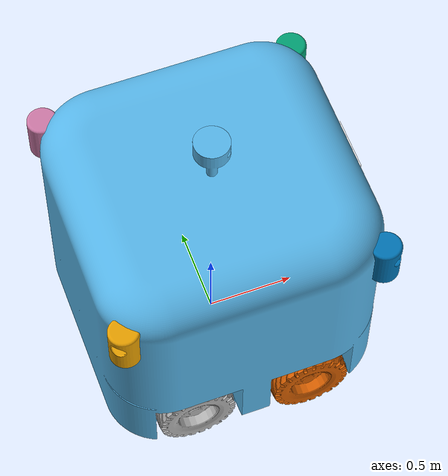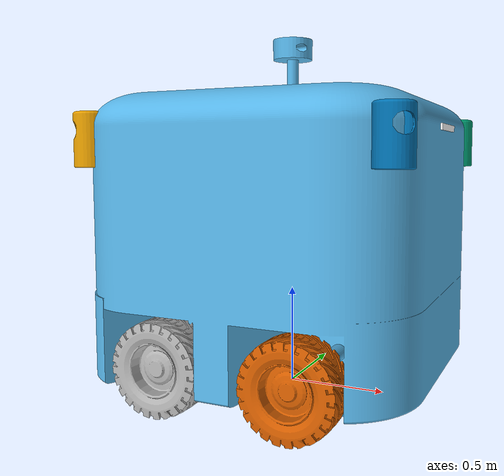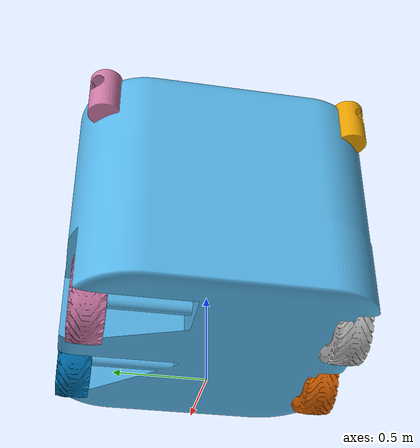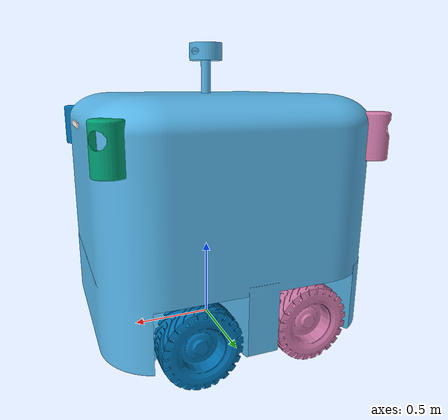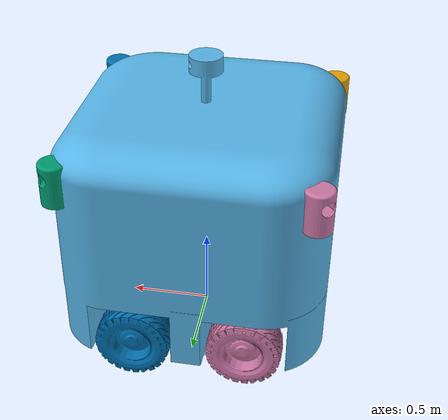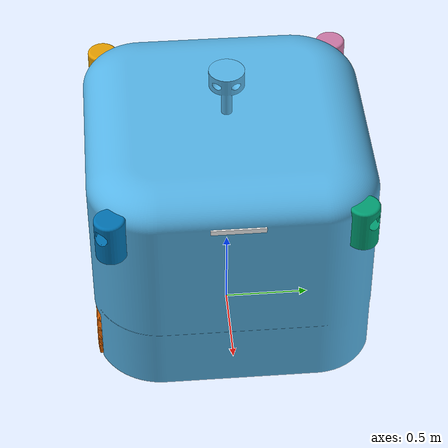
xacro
<?xml version="1.0"?>
<robot xmlns:xacro="http://www.ros.org/wiki/xacro" name="deliverybot_sim">

    <!-- Launch args-->

    <xacro:arg name="gazebo_version" default="classic"/>
    <xacro:property name="gazebo_version" value="$(arg gazebo_version)"/>

    <!-- Gazebo Ignition sensor plugins-->
    <xacro:if value="${gazebo_version == 'ignition'}">
      <gazebo>
        <plugin
          filename="libignition-gazebo-sensors-system.so" name="ignition::gazebo::systems::Sensors">
          <render_engine>ogre2</render_engine>
        </plugin>
      </gazebo>
    </xacro:if>

    <!-- Gazebo gz sensor plugins-->
    <xacro:if value="${gazebo_version == 'gz'}">
      <gazebo>
        <plugin
          filename="libgazebo_garden_plugin.so" name="gazebo_garden_plugin"/>
      </gazebo>
    </xacro:if>

    <!-- Robot Structure  -->
    <xacro:include filename="$(find deliverybot_description)/urdf/common_properties.xacro" />
    <xacro:include filename="$(find deliverybot_description)/urdf/inertial_properties.xacro" />
    <xacro:include filename="$(find deliverybot_description)/urdf/robot.xacro" />

    <!-- Sensors-->
    <xacro:include filename="$(find deliverybot_description)/urdf/imu.xacro" />
    <xacro:include filename="$(find deliverybot_description)/urdf/lidar.xacro" />
    <xacro:include filename="$(find deliverybot_description)/urdf/depth_camera.xacro" />

    <!-- Frictions and Transmissions-->
    <xacro:include filename="$(find deliverybot_description)/urdf/gazebo_properties.xacro" />

    <!-- Ackermann Control -->
    <xacro:include filename="$(find deliverybot_description)/urdf/gazebo_ros2_control.xacro"/>

</robot>

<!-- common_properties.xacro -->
<robot xmlns:xacro="http://www.ros.org/wiki/xacro">

    <!-- Variables -->
    <xacro:property name="PI" value="3.14"/>

    <!-- chassis position-->
    <xacro:property name="body_offset_z" value="0.802"/>

    <!-- wheels properties -->
    <xacro:property name="wheel_radius" value="0.226428"/>
    <xacro:property name="wheel_diameter" value="0.452856"/>
    <xacro:property name="wheel_separation_y" value="1.353834"/>
    <xacro:property name="wheel_mass" value="2.26428" />
    <xacro:property name="wheel_length" value="0.1869477" />

    <xacro:property name="front_offset_x" value="0.31398"/>
    <xacro:property name="rear_offset_x" value="-0.354123"/>
    <xacro:property name="left_offset_y" value="0.676917"/>
    <xacro:property name="right_offset_y" value="-0.676917"/>
    <xacro:property name="left_offset_from_steer_y" value="0.03"/>
    <xacro:property name="right_offset_from_steer_y" value="-0.03"/>
    <xacro:property name="body_wheels_offset_z" value="${0.22388 - body_offset_z}"/>

    <!-- scan (2D lidar)-->

    <!-- imu-->
    <xacro:property name="body_imu_offset_z" value="${0.22388 - body_offset_z}"/>

    <!-- lidar-->
    <xacro:property name="lidar_offset_x" value="0.72184"/>
    <xacro:property name="lidar_offset_y" value="0.679109"/>
    <xacro:property name="lidar_offset_yaw" value="${PI/4}"/>
    <xacro:property name="body_lidar_offset_z" value="${1.2194 - body_offset_z}"/>
    <xacro:property name="lidar_sensor_offset_z" value="${1.3094 - body_offset_z}"/>
    <xacro:property name="central_lidar_offset_z" value="${1.69712 - body_offset_z}"/>

    <!-- depth camera-->
    <xacro:property name="depth_camera_offset_x" value="0.79739"/>
    <xacro:property name="depth_camera_offset_y" value="0.0"/>
    <xacro:property name="body_depth_camera_offset_z" value="${1.3234 - body_offset_z}"/>

    <!-- Ackermann plugin -->
    <xacro:property name="wheelbase_x" value="0.663378"/>
    <xacro:property name="front_wheel_track_y" value="1.353834"/>
    <xacro:property name="rear_wheel_track_y" value="1.353834"/>
    <xacro:property name="front_wheels_radius" value="${wheel_radius}"/>
    <xacro:property name="rear_wheels_radius" value="${wheel_radius}"/>

    <xacro:property name="steering_effort_limit" value="5.0"/>
    <xacro:property name="steering_velocity_limit" value="1000.0"/>

    <xacro:property name="wheel_effort_limit" value="10.0"/>
    <xacro:property name="wheel_velocity_limit" value="1000.0"/>

    <xacro:property name="damping" value="0.0"/>
    <xacro:property name="friction" value="2.0"/>

    <xacro:property name="mu1" value="10.0" />
    <xacro:property name="mu2" value="8.0" />

    <!-- RVIZ Materials -->
    <material name="white">
        <color rgba="1 1 1 1"/>
    </material>
    <material name="grey">
        <color rgba="0.5 0.5 0.5 1"/>
    </material>
    <material name="anthracite">
        <color rgba="0.219 0.2431 0.2588 1"/>
    </material>

</robot>

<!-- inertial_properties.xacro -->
<robot xmlns:xacro="http://www.ros.org/wiki/xacro">

  <!-- BODY-->
  <xacro:macro name="body_inertial">
      <inertial>
        <origin xyz="-0.0055 -0.0002 -0.0014" rpy="0.0 0.0 0.0"/>

        <mass value="21.828734672527542"/>
        <inertia
          ixx="197.9644035402808"
          ixy="-1.9097414111524087"
          ixz="-0.1499079161071719"
          iyy="214.31325562158773"
          iyz="0.24907860474737206"
          izz="235.7642298262934"/>
      </inertial>
  </xacro:macro>

  <!-- STEERING-->
  <xacro:macro name="steering_inertial">
    <inertial>
      <mass value="0.25"/>
      <inertia
            ixx="0.001"
            ixy="0"
            ixz="0"
            iyy="0.001"
            iyz="0"
            izz="0.001"/>
    </inertial>
  </xacro:macro>

  <!-- WHEELS -->
  <!-- dummy-->
  <xacro:macro name="cylinder_inertial" params="m r l xyz rpy">
    <inertial>
        <origin xyz="${xyz}" rpy="${rpy}"/>
        <mass value="${m}" />
        <inertia ixx="${(m/12)*(3*r*r+l*l)}" ixy="0" ixz="0"
                  iyy="${(m/12)*(3*r*r+l*l)}" iyz="0"
                  izz="${(m*r*r)/2}" />
    </inertial>
  </xacro:macro>

  <xacro:macro name="wheel_right_inertial">
    <inertial>
      <origin rpy="1.57 0 0" xyz="0 0 0"/>
    <mass value="2.26428"/>
    <inertia
        ixx="0.142467259859483"
        ixy="0"
        ixz="0"
        iyy="0.142467259859483"
        iyz="0"
        izz="0.232177637223095"/>
    </inertial>
  </xacro:macro>

  <xacro:macro name="wheel_left_inertial">
    <inertial>
      <origin rpy="1.57 0 0" xyz="0 0 0"/>
      <mass value="2.26428"/>
      <inertia
        ixx="0.142467259859483"
        ixy="0"
        ixz="0"
        iyy="0.142467259859483"
        iyz="0"
        izz="0.232177637223095"/>
    </inertial>
  </xacro:macro>

  <!-- IMU-->
  <xacro:macro name="imu_inertial">
    <inertial>
      <origin rpy="0.0009 0.0007 0.0003" xyz="0 0 0"/>
      <mass value="0.011352005096910034"/>
      <inertia
        ixx="4.417895181776976e-08"
        ixy="1.772271240247652e-09"
        ixz="3.0915776324453116e-10"
        iyy="2.7136906330486448e-08"
        iyz="1.9975539330428303e-11"
        izz="6.995430697342334e-08"/>
    </inertial>
  </xacro:macro>

    <!-- LIDAR -->
    <xacro:macro name="lidar_inertial">
      <inertial>
        <origin rpy="-0.0019 -0.0000 0.0658" xyz="0 0 0"/>
        <mass value="0.28590020390563653"/>
        <inertia
          ixx="0.000762452760169552"
          ixy="-7.066832712187747e-07"
          ixz="6.444761162481759e-06"
          iyy="0.000749768395733118"
          iyz="6.301900964921601e-07"
          izz="0.00045580963102950615"/>
      </inertial>
    </xacro:macro>

    <!-- SCAN (2D LIDAR)-->
    <xacro:macro name="scan_inertial">
      <inertial>
        <origin rpy="0.0330 -0.0053 0.0649" xyz="0 0 0"/>
        <mass value="0.21203350920404773"/>
        <inertia
          ixx="0.011147881277066674"
          ixy="2.5242109472028173e-05"
          ixz="-0.0001421632368715965"
          iyy="0.01111192455712341"
          iyz="4.152678017456252e-05"
          izz="0.0006292909214225758"/>
      </inertial>
    </xacro:macro>

</robot>

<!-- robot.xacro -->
<robot xmlns:xacro="http://www.ros.org/wiki/xacro">

    <!-- LINKS ===========================================================-->

    <link name="base_link" />

    <!-- Body link -->
    <link name="body_link">
        <xacro:body_inertial/>
        <visual>
            <geometry>
                <mesh filename="package://deliverybot_description/meshes/deliverybot_body.obj" scale="1 1 1" />
            </geometry>
            <origin xyz="0 0 0" rpy="0 0 0" />
        </visual>
        <collision>
            <geometry>
                <mesh filename="package://deliverybot_description/meshes/deliverybot_body_collision.stl" scale="1 1 1"/>
            </geometry>
            <origin xyz="0 0 0" rpy="0 0 0" />
        </collision>
    </link>

    <!-- Steering links -->
      <link name="steering_left_link">
        <xacro:steering_inertial/>
        <visual>
            <origin xyz="0 0 0" rpy="0 0 0" />
            <geometry>
                <cylinder length="0.0001" radius="0.0001" />
            </geometry>
        </visual>
    </link>

    <link name="steering_right_link">
        <xacro:steering_inertial/>
        <visual>
            <origin xyz="0 0 0" rpy="0 0 0" />
            <geometry>
                <cylinder length="0.0001" radius="0.0001" />
            </geometry>
        </visual>
    </link>

    <!-- Front Wheels Links -->
    <link name="wheel_front_left_link">
        <xacro:wheel_left_inertial/>
        <visual>
            <origin xyz="0.0 0.0 0.0" rpy="0 0 0"/>
            <geometry>
                <mesh filename="package://deliverybot_description/meshes/deliverybot_wheel_left.obj" scale="1 1 1"/>
            </geometry>
        </visual>
        <collision>
            <origin rpy="1.57 0 0" xyz="0 0 0"/>
            <geometry>
                <cylinder length="0.1869477" radius="0.226428"/>
            </geometry>
        </collision>
    </link>

    <link name="wheel_front_right_link">
        <xacro:wheel_right_inertial/>
        <visual>
            <origin xyz="0.0 0.0 0.0" rpy="0 0 0"/>
            <geometry>
                <mesh filename="package://deliverybot_description/meshes/deliverybot_wheel_right.obj" scale="1 1 1"/>
            </geometry>
        </visual>
        <collision>
            <origin rpy="1.57 0 0" xyz="0 0 0"/>
            <geometry>
                <cylinder length="0.1869477" radius="0.226428"/>
            </geometry>
       </collision>
    </link>

    <!--Rear Wheels Links -->
    <link name="wheel_rear_left_link">
        <xacro:wheel_left_inertial/>
        <visual>
            <origin xyz="0.0 0.0 0.0" rpy="0 0 0"/>
            <geometry>
                <mesh filename="package://deliverybot_description/meshes/deliverybot_wheel_left.obj" scale="1 1 1"/>
            </geometry>
        </visual>
        <collision>
            <origin rpy="1.57 0 0" xyz="0 0 0"/>
            <geometry>
                <cylinder length="0.1869477" radius="0.226428"/>
            </geometry>
        </collision>
    </link>

    <link name="wheel_rear_right_link">
        <xacro:wheel_right_inertial/>
        <visual>
            <origin xyz="0.0 0.0 0.0" rpy="0 0 0"/>
            <geometry>
                <mesh filename="package://deliverybot_description/meshes/deliverybot_wheel_right.obj" scale="1 1 1"/>
            </geometry>
        </visual>
        <collision>
            <origin rpy="1.57 0 0" xyz="0 0 0"/>
            <geometry>
                <cylinder length="0.1869477" radius="0.226428"/>
            </geometry>
        </collision>
    </link>

    <!-- JOINTS =================================================================-->

    <joint name="base_body_joint" type="fixed">
        <parent link="base_link" />
        <child link="body_link" />
        <origin xyz="0 0 ${body_offset_z}" rpy="0 0 0" />
    </joint>

     <!-- Steering joints-->
     <joint name="steering_left_joint" type="revolute">
        <parent link="body_link" />
        <child link="steering_left_link" />
        <origin xyz="${front_offset_x} ${left_offset_y} ${body_wheels_offset_z}" rpy="0 0 0" />
        <axis xyz="0 0 1" />
        <limit
            lower="${-PI/4}"
            upper="${PI/4}"
            effort="${steering_effort_limit}"
            velocity="${steering_velocity_limit}" />
    </joint>

    <joint name="steering_right_joint" type="revolute">
        <parent link="body_link" />
        <child link="steering_right_link" />
        <origin xyz="${front_offset_x} ${right_offset_y} ${body_wheels_offset_z}" rpy="0 0 0" />
        <axis xyz="0 0 1" />
        <limit
            lower="${-PI/4}"
            upper="${PI/4}"
            effort="${steering_effort_limit}"
            velocity="${steering_velocity_limit}" />
        </joint>

    <!--Front Wheels Joints -->
    <joint name="wheel_front_left_joint" type="continuous">
        <parent link="steering_left_link"/>
        <child link="wheel_front_left_link" />
        <origin xyz="0 ${left_offset_from_steer_y} 0" rpy="0 0 0"/>
        <axis xyz="0 1 0" />
        <limit
            effort="${wheel_effort_limit}"
            velocity="${wheel_velocity_limit}"/>

    </joint>

    <joint name="wheel_front_right_joint" type="continuous">
        <parent link="steering_right_link"/>
        <child link="wheel_front_right_link" />
        <origin xyz="0 ${right_offset_from_steer_y} 0" rpy="0 0 0"/>
        <axis xyz="0 1 0" />
        <limit
            effort="${wheel_effort_limit}"
            velocity="${wheel_velocity_limit}"/>
    </joint>

    <!--  Rear Wheels Joints -->
    <joint name="wheel_rear_left_joint" type="continuous">
        <parent link="body_link"/>
        <child link="wheel_rear_left_link" />
        <origin xyz="${rear_offset_x} ${left_offset_y} ${body_wheels_offset_z}" rpy="0 0 0"/>
        <axis xyz="0 1 0" />
        <limit
            effort="${wheel_effort_limit}"
            velocity="${wheel_velocity_limit}"/>
    </joint>

    <joint name="wheel_rear_right_joint" type="continuous">
        <parent link="body_link"/>
        <child link="wheel_rear_right_link" />
        <origin xyz="${rear_offset_x} ${right_offset_y} ${body_wheels_offset_z}" rpy="0 0 0"/>
        <axis xyz="0 1 0" />
        <limit
            effort="${wheel_effort_limit}"
            velocity="${wheel_velocity_limit}"/>
    </joint>

</robot>

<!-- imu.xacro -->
<robot xmlns:xacro="http://www.ros.org/wiki/xacro" >

    <!-- Link -->
    <link name="imu_link">
        <xacro:imu_inertial/>
        <visual>
          <origin xyz="0 0 0" rpy="0 0 0" />
          <geometry>
            <mesh filename="package://deliverybot_description/meshes/imu.stl" />
          </geometry>
          <material name="grey"/>
        </visual>
        <collision>
          <origin xyz="0 0 0" rpy="0 0 0" />
          <geometry>
            <mesh filename="package://deliverybot_description/meshes/imu.stl" />
          </geometry>
          <material name="grey"/>
        </collision>
      </link>

      <!-- Joint-->
      <joint name="imu_joint" type="fixed">
        <origin xyz="0 0 ${body_imu_offset_z}" rpy="0 0 0" />
        <parent link="body_link" />
        <child link="imu_link" />
      </joint>

      <!-- Plugin-->
    <gazebo reference="imu_link">
        <sensor name="imu" type="imu">
            <always_on>true</always_on>
            <update_rate>100</update_rate>

            <!-- GAZEBO IGNITION AND GZ-->
            <xacro:if value="${gazebo_version == 'gz'}">
              <gz_frame_id>imu_link</gz_frame_id>
            </xacro:if>

            <imu>
            <angular_velocity>
                <x>
                <noise type="gaussian">
                    <mean>0.0</mean>
                    <stddev>2e-4</stddev>
                </noise>
                </x>
                <y>
                <noise type="gaussian">
                    <mean>0.0</mean>
                    <stddev>2e-4</stddev>
                </noise>
                </y>
                <z>
                <noise type="gaussian">
                    <mean>0.0</mean>
                    <stddev>2e-4</stddev>
                </noise>
                </z>
            </angular_velocity>
            <linear_acceleration>
                <x>
                <noise type="gaussian">
                    <mean>0.0</mean>
                    <stddev>1.7e-2</stddev>
                </noise>
                </x>
                <y>
                <noise type="gaussian">
                    <mean>0.0</mean>
                    <stddev>1.7e-2</stddev>
                </noise>
                </y>
                <z>
                <noise type="gaussian">
                    <mean>0.0</mean>
                    <stddev>1.7e-2</stddev>
                </noise>
                </z>
            </linear_acceleration>
            </imu>

            <!-- GAZEBO CLASSIC PLUGIN -->
            <xacro:if value="${gazebo_version == 'classic'}">
              <plugin name="imu" filename="libgazebo_ros_imu_sensor.so"/>
            </xacro:if>
        </sensor>
    </gazebo>

</robot>

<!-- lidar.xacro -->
<robot xmlns:xacro="http://www.ros.org/wiki/xacro" >

    <!-- Links -->

 <!-- Reference link for the fused pointcloud-->
  <link name="central_lidar_link">
    <xacro:scan_inertial/>
    <visual>
        <origin xyz="0 0 0" rpy="0 0 0" />
        <geometry>
            <mesh filename="package://deliverybot_description/meshes/scan.obj" />
        </geometry>
    </visual>
    <collision>
        <origin xyz="0 0 0" rpy="0 0 0" />
        <geometry>
            <mesh filename="package://deliverybot_description/meshes/scan.stl" />
        </geometry>
    </collision>
  </link>

  <joint name="body_central_lidar_joint" type="fixed">
    <origin xyz="0 0 ${central_lidar_offset_z}" rpy="0 0 0" />
        <parent link="body_link" />
        <child link="central_lidar_link" />
  </joint>

 <!-- Macro for LiDAR links and joints -->
 <xacro:macro name="lidar_sensor" params="name prefix_x prefix_y yaw_multiplier">

    <link name="${name}_support_link">
        <xacro:lidar_inertial/>
        <visual>
            <origin xyz="0 0 0" rpy="0 0 ${yaw_multiplier * lidar_offset_yaw}" />
            <geometry>
                <mesh filename="package://deliverybot_description/meshes/lidar.obj" />
            </geometry>
        </visual>
        <collision>
            <origin xyz="0 0 0" rpy="0 0 ${yaw_multiplier * lidar_offset_yaw}" />
            <geometry>
                <mesh filename="package://deliverybot_description/meshes/lidar.stl" />
            </geometry>
        </collision>
    </link>

    <link name="${name}_link"/>

    <joint name="${name}_support_joint" type="fixed">
        <origin xyz="${prefix_x * lidar_offset_x} ${prefix_y * lidar_offset_y} ${body_lidar_offset_z}" rpy="0 0 0" />
        <parent link="body_link" />
        <child link="${name}_support_link" />
    </joint>

    <joint name="${name}_joint" type="fixed">
        <origin xyz="${prefix_x * lidar_offset_x} ${prefix_y * lidar_offset_y} ${lidar_sensor_offset_z}" rpy="0 0 ${yaw_multiplier * lidar_offset_yaw}" />
        <parent link="body_link" />
        <child link="${name}_link" />
    </joint>
</xacro:macro>

<!-- Use the macro for each LiDAR -->
<xacro:lidar_sensor name="lidar_front_left"  prefix_x="1"  prefix_y="1"  yaw_multiplier="1"/>
<xacro:lidar_sensor name="lidar_front_right" prefix_x="1"  prefix_y="-1" yaw_multiplier="-1"/>
<xacro:lidar_sensor name="lidar_rear_left"   prefix_x="-1" prefix_y="1"  yaw_multiplier="3"/>
<xacro:lidar_sensor name="lidar_rear_right"  prefix_x="-1" prefix_y="-1" yaw_multiplier="-3"/>

<!-- Plugins-->
<xacro:if value="${gazebo_version == 'classic'}">
    <xacro:macro name="lidar_sensor" params="name">
        <gazebo reference="${name}_link">
            <sensor type="gpu_ray" name="${name}">
                <pose>0 0 0 0 0 0</pose>
                <visualize>false</visualize>
                <always_on>true</always_on>
                <update_rate>5</update_rate>
                <ray>
                    <scan>
                        <horizontal>
                            <samples>100</samples>
                            <resolution>1</resolution>
                            <min_angle>-1.04</min_angle> <!-- -60 degrees -->
                            <max_angle>1.04</max_angle>  <!-- 60 degrees -->
                        </horizontal>
                        <vertical>
                            <samples>32</samples>
                            <resolution>1</resolution>
                            <min_angle>-0.436</min_angle> <!-- -25 degrees -->
                            <max_angle>0.1308</max_angle>  <!-- 7.5 degrees -->
                        </vertical>
                    </scan>
                    <range>
                        <min>0.10</min>
                        <max>20.0</max>
                        <resolution>0.02</resolution>
                    </range>
                </ray>

                <!-- GAZEBO CLASSIC PLUGIN-->
                <plugin name="gazebo_ros_${name}_controller" filename="libgazebo_ros_ray_sensor.so">
                    <ros>
                        <namespace>/</namespace>
                        <remapping>~/out:=${name}/points</remapping>
                    </ros>
                    <output_type>sensor_msgs/PointCloud2</output_type>
                    <frame_name>${name}_link</frame_name>
                </plugin>
            </sensor>
        </gazebo>
    </xacro:macro>
    </xacro:if>

<xacro:if value="${gazebo_version == 'ignition'}">
    <xacro:macro name="lidar_sensor" params="name">
       <gazebo reference="${name}_link">
        <sensor name="${name}" type="gpu_lidar">
            <ignition_frame_id>${name}_link</ignition_frame_id>
            <pose relative_to="${name}_link">0 0 0 0 0 0</pose>
            <topic>${name}/scan</topic>
            <update_rate>10</update_rate>
            <ray>
                <scan>
                    <horizontal>
                        <samples>100</samples>
                        <resolution>1</resolution>
                        <min_angle>-1.04</min_angle> <!-- -60 degrees -->
                        <max_angle>1.04</max_angle>  <!-- 60 degrees -->
                    </horizontal>
                    <vertical>
                        <samples>32</samples>
                        <resolution>1</resolution>
                        <min_angle>-0.436</min_angle> <!-- -25 degrees -->
                        <max_angle>0.1308</max_angle>  <!-- 7.5 degrees -->
                    </vertical>
                </scan>
                <range>
                    <min>0.10</min>
                    <max>20.0</max>
                    <resolution>0.02</resolution>
                </range>
            </ray>
            <always_on>1</always_on>
            <visualize>true</visualize>
        </sensor>
    </gazebo>
    </xacro:macro>
    </xacro:if>

<xacro:if value="${gazebo_version == 'gz'}">
    <xacro:macro name="lidar_sensor" params="name">
       <gazebo reference="${name}_link">
        <sensor name="${name}" type="gpu_lidar">"
            <gz_frame_id>"${name}_link</gz_frame_id>
            <pose relative_to="${name}_link">0 0 0 0 0 0</pose>
            <topic>${name}/scan</topic>
            <update_rate>10</update_rate>
            <ray>
                <scan>
                    <horizontal>
                        <samples>100</samples>
                        <resolution>1</resolution>
                        <min_angle>-1.04</min_angle> <!-- -60 degrees -->
                        <max_angle>1.04</max_angle>  <!-- 60 degrees -->
                    </horizontal>
                    <vertical>
                        <samples>32</samples>
                        <resolution>1</resolution>
                        <min_angle>-0.436</min_angle> <!-- -25 degrees -->
                        <max_angle>0.1308</max_angle>  <!-- 7.5 degrees -->
                    </vertical>
                </scan>
                <range>
                    <min>0.10</min>
                    <max>20.0</max>
                    <resolution>0.02</resolution>
                </range>
            </ray>
            <always_on>1</always_on>
            <visualize>true</visualize>
        </sensor>
    </gazebo>
    </xacro:macro>
    </xacro:if>

<!-- Use the macro for each LiDAR -->
<xacro:lidar_sensor name="lidar_front_left"/>
<xacro:lidar_sensor name="lidar_front_right"/>
<xacro:lidar_sensor name="lidar_rear_left"/>
<xacro:lidar_sensor name="lidar_rear_right"/>

</robot>

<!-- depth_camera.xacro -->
<robot xmlns:xacro="http://www.ros.org/wiki/xacro">

    <!-- LINKS -->
    <link name="depth_camera_link">
        <visual>
            <geometry>
                <box size="0.010 0.3 0.03"/>
            </geometry>
            <material name="white"/>
        </visual>
    </link>

    <link name="depth_camera_optical_link"/>

    <!-- JOINTS-->
    <joint name="depth_camera_joint" type="fixed">
        <parent link="body_link"/>
        <child link="depth_camera_link"/>
        <origin xyz="${depth_camera_offset_x} ${depth_camera_offset_y} ${body_depth_camera_offset_z}" rpy="0.0 0.0 0.0"/>
    </joint>

    <joint name="depth_camera_optical_joint" type="fixed">
        <parent link="depth_camera_link"/>
        <child link="depth_camera_optical_link"/>
        <origin xyz="0.011 0 0" rpy="${-PI/2} 0 ${-PI/2}"/>
    </joint>

    <!-- GAZEBO CLASSIC -->
    <xacro:if value="${gazebo_version == 'classic'}">
        <gazebo reference="depth_camera_link">
            <material>Gazebo/Red</material>
            <sensor name="depth_camera" type="depth"> <!-- Depth camera-->
                <pose> 0 0 0 0 0 0 </pose>
                <visualize>true</visualize>
                <update_rate>10</update_rate>
                <camera>
                    <horizontal_fov>1.089</horizontal_fov>
                    <image>
                        <format>B8G8R8</format> <!-- HERE we swap the channels from  RGB to BGR-->
                        <width>640</width>
                        <height>480</height>
                    </image>
                    <clip>
                        <near>0.05</near>
                        <far>8.0</far>
                    </clip>
                </camera>
                <plugin name="camera_controller" filename="libgazebo_ros_camera.so">
                    <frame_name>depth_camera_optical_link</frame_name>
                    <min_depth>0.1</min_depth> <!-- Minimum distance from the camera at which objects can be detected - filters out too close objects-->
                    <max_depth>100.0</max_depth> <!-- Maximum distance from the camera at which objects can be detected - filters out too far objects-->
                </plugin>
            </sensor>
        </gazebo>
    </xacro:if>

    <!-- GAZEBO IGNITION AND GZ -->
    <xacro:if value="${gazebo_version == 'ignition'}">
        <gazebo reference="depth_camera_link">
            <sensor type="rgbd_camera" name="depth_camera_sensor">
            <topic>depth_camera</topic>
            <frame_id>depth_camera_optical_link</frame_id>
            <ignition_frame_id>depth_camera_optical_link</ignition_frame_id>
            <update_rate>20.0</update_rate>
            <camera name="depth_camera">
                <horizontal_fov>1.02974</horizontal_fov>
                <image>
                    <width>640</width>
                    <height>480</height>
                    <format>R8G8B8</format>
                </image>
                <clip>
                    <near>0.02</near>
                    <far>20</far>
                </clip>
            </camera>
            <depth_camera>
                <clip>
                    <near>0.02</near>
                    <far>20</far>
                </clip>
            </depth_camera>
            <point_cloud>
                <enabled>true</enabled>
            </point_cloud>
            <always_on>1</always_on>
            <visualize>true</visualize>
            </sensor>
        </gazebo>
    </xacro:if>

    <xacro:if value="${gazebo_version == 'gz'}">
        <gazebo reference="depth_camera_link">
            <sensor type="rgbd_camera" name="depth_camera_sensor">
            <topic>depth_camera</topic>
            <frame_id>depth_camera_optical_link</frame_id>
            <gz_frame_id>depth_camera_optical_link</gz_frame_id>
            <update_rate>20.0</update_rate>
            <camera name="depth_camera">
                <horizontal_fov>1.02974</horizontal_fov>
                <image>
                    <width>640</width>
                    <height>480</height>
                    <format>R8G8B8</format>
                </image>
                <clip>
                <near>0.02</near>
                <far>20</far>
                </clip>
            </camera>
            <depth_camera>
                <clip>
                    <near>0.02</near>
                    <far>20</far>
                </clip>
            </depth_camera>
            <point_cloud>
                <enabled>true</enabled>
            </point_cloud>
            <always_on>1</always_on>
            <visualize>true</visualize>
            </sensor>
        </gazebo>
    </xacro:if>
</robot>
